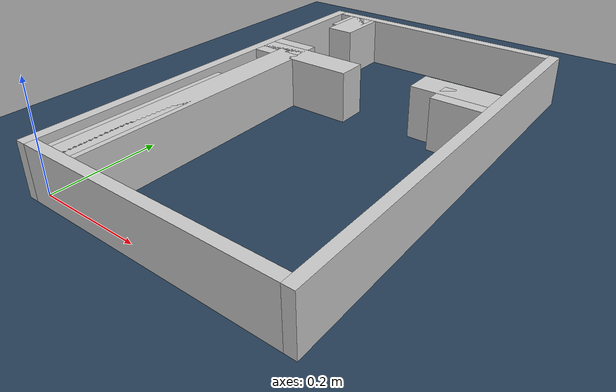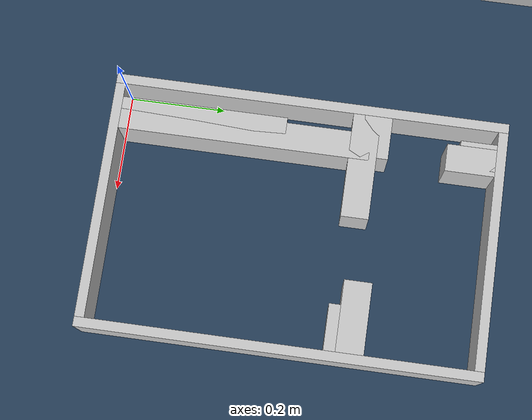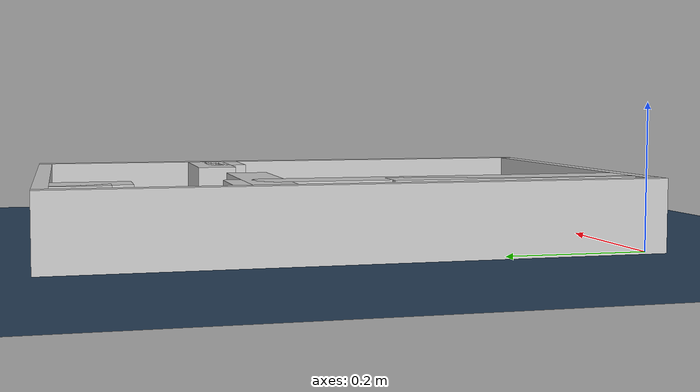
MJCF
<?xml version="1.0" ?>
<mujoco model="generated_real_template">
  <compiler angle="degree"/>
  <option timestep="0.002" integrator="implicitfast" iterations="100" cone="elliptic"/>
  <default>
    <geom density="1"/>
  </default>
  <asset>
    <texture builtin="gradient" height="3072" rgb1="0.3 0.5 0.7" rgb2="0 0 0" type="skybox" width="512"/>
    <texture builtin="checker" height="300" mark="edge" markrgb="0.8 0.8 0.8" name="groundplane" rgb1="0.2 0.3 0.4" rgb2="0.1 0.2 0.3" type="2d" width="300"/>
    <material name="groundplane" reflectance="0.2" texrepeat="5 5" texture="groundplane" texuniform="true"/>
  </asset>
  <worldbody>
    <light dir="0 0 -1" directional="true" pos="0 0 1.5"/>
    <geom name="floor" type="plane" condim="4" friction="0.5 0.005 0.001" material="groundplane" size="0 0 0.05"/>
    <body name="walls">
      <geom name="wall_boundary_left" type="box" condim="4" friction="1.0 0.005 0.0001" rgba="0.8 0.8 0.8 1" pos="-0.010000 0.387500 0.050000" euler="0 0 0.000000" size="0.010000 0.407500 0.050000"/>
      <geom name="wall_boundary_right" type="box" condim="4" friction="1.0 0.005 0.0001" rgba="0.8 0.8 0.8 1" pos="0.500000 0.387500 0.050000" euler="0 0 0.000000" size="0.010000 0.407500 0.050000"/>
      <geom name="wall_boundary_bottom" type="box" condim="4" friction="1.0 0.005 0.0001" rgba="0.8 0.8 0.8 1" pos="0.245000 -0.010000 0.050000" euler="0 0 0.000000" size="0.245000 0.010000 0.050000"/>
      <geom name="wall_boundary_top" type="box" condim="4" friction="1.0 0.005 0.0001" rgba="0.8 0.8 0.8 1" pos="0.245000 0.785000 0.050000" euler="0 0 0.000000" size="0.245000 0.010000 0.050000"/>
      <geom name="wall_inner_1_1" type="box" condim="4" friction="1.0 0.005 0.0001" rgba="0.8 0.8 0.8 1" pos="0.108859 0.504195 0.050000" euler="0 0 0.000000" size="0.108859 0.028500 0.050000"/>
      <geom name="wall_inner_1_2" type="box" condim="4" friction="1.0 0.005 0.0001" rgba="0.8 0.8 0.8 1" pos="0.443026 0.504195 0.050000" euler="0 0 0.000000" size="0.046974 0.028500 0.050000"/>
      <geom name="wall_inner_2_1" type="box" condim="4" friction="1.0 0.005 0.0001" rgba="0.8 0.8 0.8 1" pos="0.044171 0.527954 0.050000" euler="0 0 0.000000" size="0.044171 0.028500 0.050000"/>
      <geom name="wall_inner_2_2" type="box" condim="4" friction="1.0 0.005 0.0001" rgba="0.8 0.8 0.8 1" pos="0.417334 0.527954 0.050000" euler="0 0 0.000000" size="0.072666 0.028500 0.050000"/>
      <geom name="wall_inner_3_1" type="box" condim="4" friction="1.0 0.005 0.0001" rgba="0.8 0.8 0.8 1" pos="0.056432 0.171111 0.050000" euler="0 0 90.000000" size="0.171111 0.028500 0.050000"/>
      <geom name="wall_inner_3_2" type="box" condim="4" friction="1.0 0.005 0.0001" rgba="0.8 0.8 0.8 1" pos="0.056432 0.737599 0.050000" euler="0 0 90.000000" size="0.037401 0.028500 0.050000"/>
      <geom name="wall_inner_4_1" type="box" condim="4" friction="1.0 0.005 0.0001" rgba="0.8 0.8 0.8 1" pos="0.066802 0.258607 0.050000" euler="0 0 90.000000" size="0.258607 0.028500 0.050000"/>
      <geom name="wall_inner_4_2" type="box" condim="4" friction="1.0 0.005 0.0001" rgba="0.8 0.8 0.8 1" pos="0.066802 0.724195 0.050000" euler="0 0 90.000000" size="0.050805 0.028500 0.050000"/>
    </body>
  </worldbody>
</mujoco>
